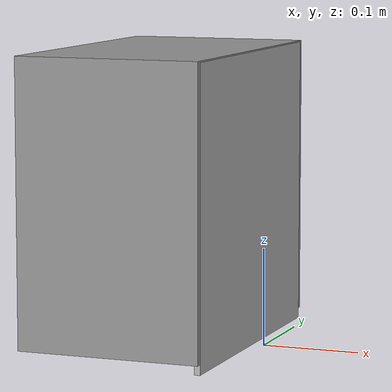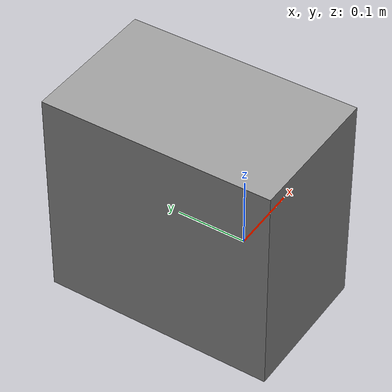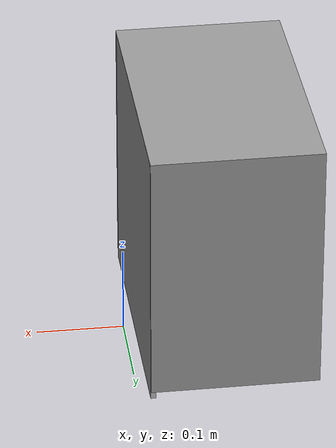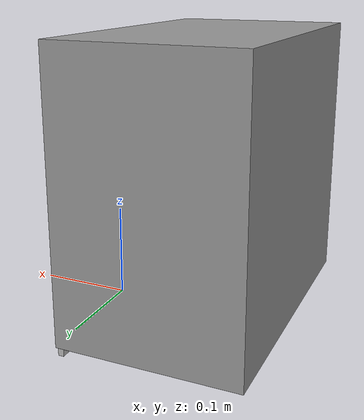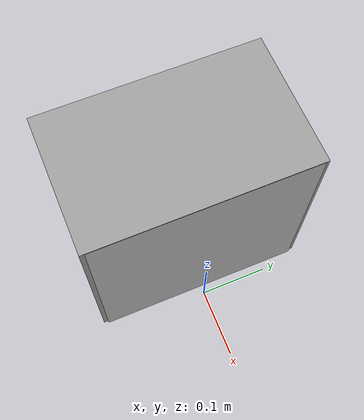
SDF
<?xml version='1.0'?>
<sdf version='1.7'>
  <model name='Marker1'>
    <link name='link'>
      <self_collide>0</self_collide>
      <enable_wind>0</enable_wind>
      <kinematic>0</kinematic>
      <pose>-0.015259 0 0 0 -0 0</pose>
      <visual name='visual'>
        <geometry>
          <mesh>
            <uri>model://marker1/meshes/Marker1.dae</uri>
            <scale>0.6 0.6 0.6</scale>
          </mesh>
        </geometry>
        <material>
          <shader type='pixel'/>
        </material>
        <pose>0 0 0 0 -0 0</pose>
        <transparency>0</transparency>
        <cast_shadows>1</cast_shadows>
      </visual>
    </link>
    <link name='link_2'>
      <inertial>
        <mass>0.0171491</mass>
        <inertia>
          <ixx>0.00025874</ixx>
          <ixy>0</ixy>
          <ixz>0</ixz>
          <iyy>0.000172601</iyy>
          <iyz>0</iyz>
          <izz>0.000189171</izz>
        </inertia>
        <pose>0 0 0 0 -0 0</pose>
      </inertial>
      <pose>-0.107191 -0.001157 0.155888 0 -0 0</pose>
      <visual name='visual'>
        <pose>0 0 0 0 -0 0</pose>
        <geometry>
          <box>
            <size>0.189863 0.31036 0.291082</size>
          </box>
        </geometry>
        <material>
          <lighting>1</lighting>
          <script>
            <uri>file://media/materials/scripts/gazebo.material</uri>
            <name>Gazebo/Grey</name>
          </script>
          <shader type='pixel'/>
        </material>
        <transparency>0</transparency>
        <cast_shadows>1</cast_shadows>
      </visual>
      <collision name='collision'>
        <laser_retro>0</laser_retro>
        <max_contacts>10</max_contacts>
        <pose>0 0 0 0 -0 0</pose>
        <geometry>
          <box>
            <size>0.189863 0.31036 0.291082</size>
          </box>
        </geometry>
        <surface>
          <friction>
            <ode>
              <mu>1</mu>
              <mu2>1</mu2>
              <fdir1>0 0 0</fdir1>
              <slip1>0</slip1>
              <slip2>0</slip2>
            </ode>
            <torsional>
              <coefficient>1</coefficient>
              <patch_radius>0</patch_radius>
              <surface_radius>0</surface_radius>
              <use_patch_radius>1</use_patch_radius>
              <ode>
                <slip>0</slip>
              </ode>
            </torsional>
          </friction>
          <bounce>
            <restitution_coefficient>0</restitution_coefficient>
            <threshold>1e+06</threshold>
          </bounce>
          <contact>
            <collide_without_contact>0</collide_without_contact>
            <collide_without_contact_bitmask>1</collide_without_contact_bitmask>
            <collide_bitmask>1</collide_bitmask>
            <ode>
              <soft_cfm>0</soft_cfm>
              <soft_erp>0.2</soft_erp>
              <kp>1e+13</kp>
              <kd>1</kd>
              <max_vel>0.01</max_vel>
              <min_depth>0</min_depth>
            </ode>
            <bullet>
              <split_impulse>1</split_impulse>
              <split_impulse_penetration_threshold>-0.01</split_impulse_penetration_threshold>
              <soft_cfm>0</soft_cfm>
              <soft_erp>0.2</soft_erp>
              <kp>1e+13</kp>
              <kd>1</kd>
            </bullet>
          </contact>
        </surface>
      </collision>
    </link>
    <static>0</static>
    <allow_auto_disable>1</allow_auto_disable>
  </model>
</sdf>
